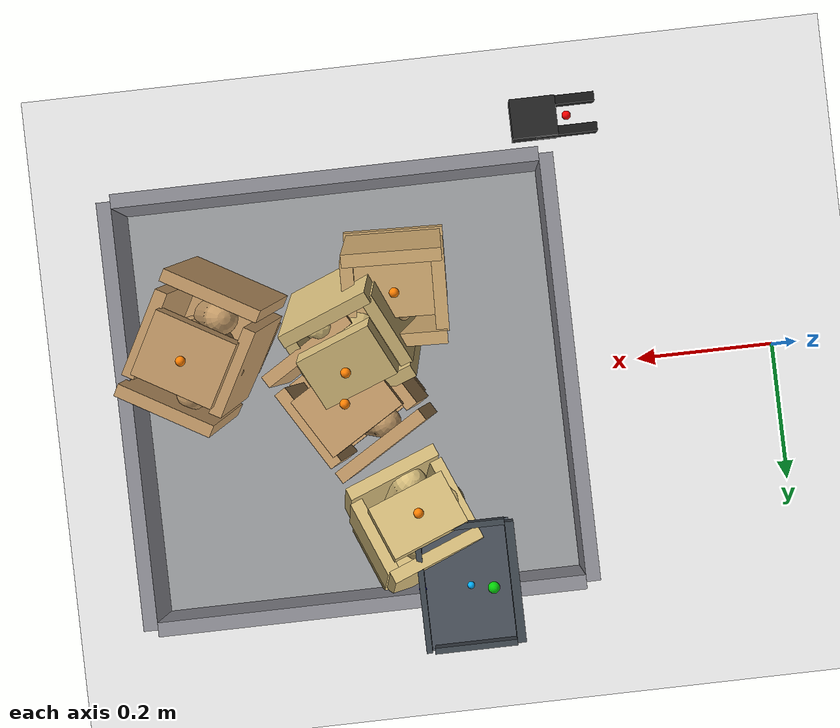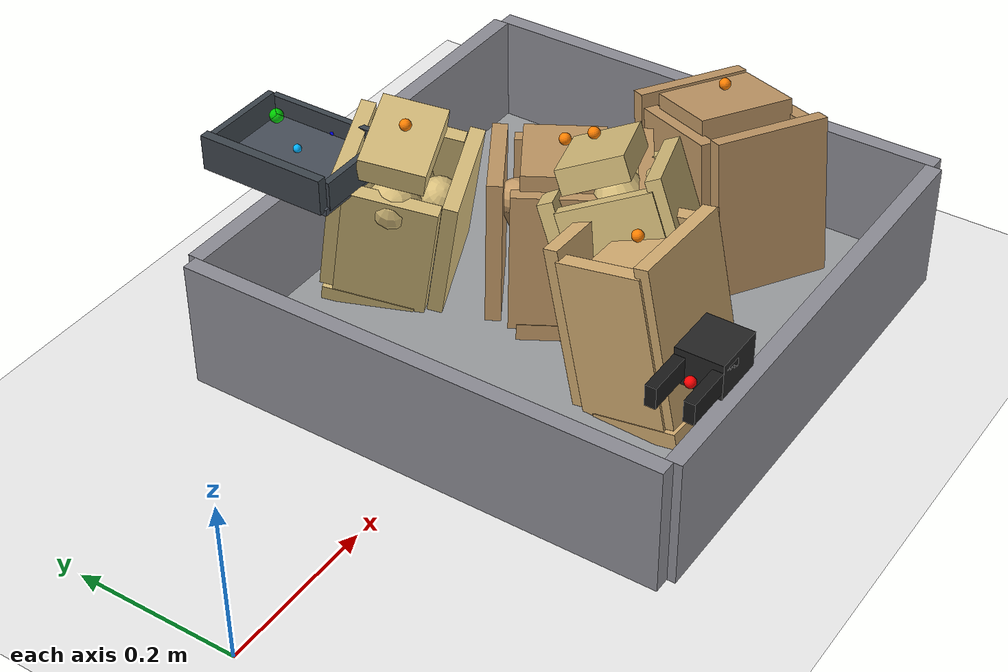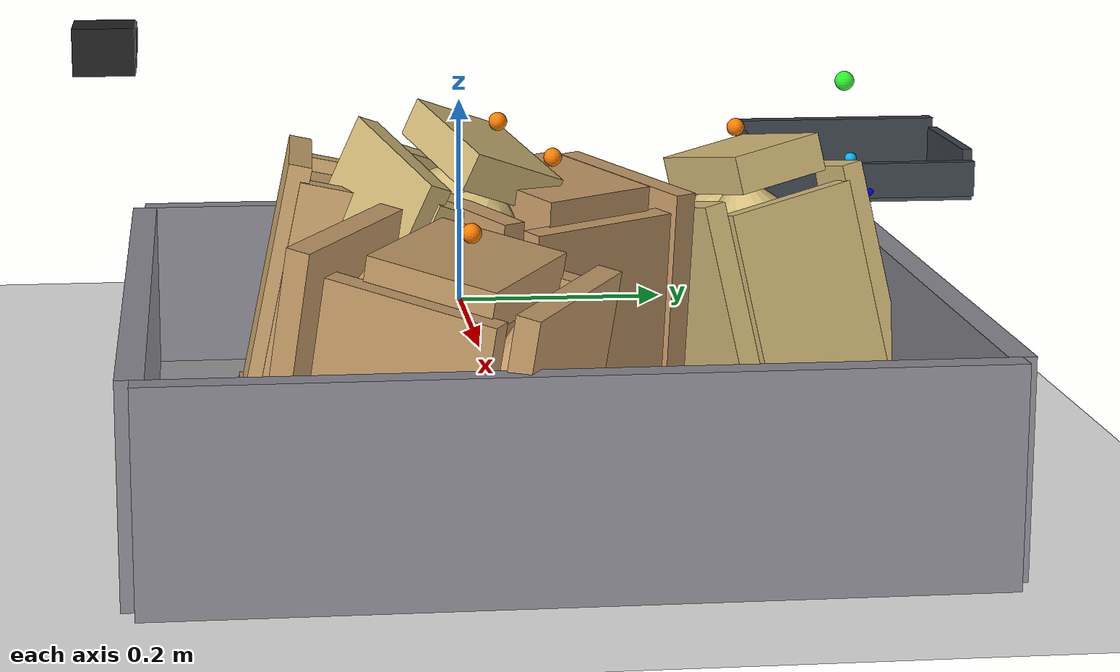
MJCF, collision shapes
<mujoco model="regular_well_filled_leaning_wedged_ep0_try0">
  <compiler angle="radian" coordinate="local" inertiafromgeom="true" meshdir="D:/Michael/2025/01.Research/01.Parceldetection/16.Pybullet/bullet3-master (1)/bullet3-master/examples/pybullet/examples/DeformableTest/Sackcodex2/object"/>
  <option timestep="0.002" gravity="0 0 -9.81" integrator="implicitfast" iterations="100" tolerance="1e-8"/>
  <size memory="768M" nconmax="12000"/>

  <visual>
    <global azimuth="128" elevation="-20"/>
    <headlight ambient="0.34 0.34 0.34" diffuse="0.78 0.78 0.78" specular="0.15 0.15 0.15"/>
    <rgba haze="0.11 0.13 0.18 1"/>
  </visual>

  <default>
    <geom condim="4" friction="1.15 0.03 0.01" margin="0.003" solimp="0.93 0.98 0.003" solref="0.012 1"/>
    <joint damping="1.2" armature="0.002"/>
    <position kp="2500" forcelimited="true" forcerange="-420 420"/>
    <motor ctrllimited="true"/>
  </default>

  <asset>
    <mesh name="sack_0_visual_mesh" file="sack8.obj" scale="0.0701 0.0701 0.0751"/>
    <mesh name="sack_1_visual_mesh" file="sack.obj" scale="0.0730 0.0730 0.0743"/>
    <mesh name="sack_2_visual_mesh" file="sack6Apply.obj" scale="0.0760 0.0760 0.0803"/>
    <mesh name="sack_3_visual_mesh" file="sack7.obj" scale="0.0707 0.0707 0.0754"/>
    <mesh name="sack_4_visual_mesh" file="sack9.obj" scale="0.0756 0.0756 0.0809"/>
  </asset>

  <worldbody>
    <light name="key" pos="0.85 0.15 1.8" dir="-0.2 -0.1 -1" directional="true"/>
    <geom name="floor" type="plane" size="2 2 0.1" rgba="0.93 0.93 0.93 1"/>
    <geom name="work_pad" type="box" pos="0.62 0 0.012" size="0.30 0.30 0.012" rgba="0.60 0.61 0.62 1" friction="1.4 0.05 0.01"/>
    <geom name="corral_front" type="box" pos="0.93 0.00 0.08" size="0.010 0.30 0.08" rgba="0.55 0.55 0.58 0.22" friction="1.0 0.03 0.01"/>
    <geom name="corral_back" type="box" pos="0.31 0.00 0.08" size="0.010 0.30 0.08" rgba="0.55 0.55 0.58 0.18" friction="1.0 0.03 0.01"/>
    <geom name="corral_left" type="box" pos="0.62 0.30 0.08" size="0.30 0.010 0.08" rgba="0.55 0.55 0.58 0.14" friction="1.0 0.03 0.01"/>
    <geom name="corral_right" type="box" pos="0.62 -0.30 0.08" size="0.30 0.010 0.08" rgba="0.55 0.55 0.58 0.14" friction="1.0 0.03 0.01"/>
    <camera name="overview" pos="1.22 0.00 0.92" xyaxes="0 1 0 -0.46 0 0.88"/>

    <body name="gripper_mocap" mocap="true" pos="0.36 -0.33 0.30" quat="0.707107 0 -0.707107 0"/>
    <body name="scoop_mocap" mocap="true" pos="0.42 0.28 0.20" quat="1 0 0 0"/>

    <body name="gripper_ctrl_base" pos="0.36 -0.33 0.30">
      <inertial pos="0 0 0" mass="0.001" diaginertia="1e-6 1e-6 1e-6"/>
      <joint name="gripper_ctrl_x" type="slide" axis="1 0 0" limited="true" range="0.20 1.00"/>
      <body name="gripper_ctrl_y_body">
        <inertial pos="0 0 0" mass="0.001" diaginertia="1e-6 1e-6 1e-6"/>
        <joint name="gripper_ctrl_y" type="slide" axis="0 1 0" limited="true" range="-0.60 0.60"/>
        <body name="gripper_ctrl_z_body">
          <inertial pos="0 0 0" mass="0.001" diaginertia="1e-6 1e-6 1e-6"/>
          <joint name="gripper_ctrl_z" type="slide" axis="0 0 1" limited="true" range="0.04 0.70"/>
          <body name="gripper_ctrl_yaw_body">
            <inertial pos="0 0 0" mass="0.001" diaginertia="1e-6 1e-6 1e-6"/>
            <joint name="gripper_ctrl_yaw" type="hinge" axis="0 0 1" limited="true" range="-3.1416 3.1416"/>
            <body name="gripper_ctrl_pitch_body">
              <inertial pos="0 0 0" mass="0.001" diaginertia="1e-6 1e-6 1e-6"/>
              <joint name="gripper_ctrl_pitch" type="hinge" axis="0 1 0" limited="true" range="-3.1416 3.1416"/>
              <body name="gripper_ctrl_roll_body">
                <inertial pos="0 0 0" mass="0.001" diaginertia="1e-6 1e-6 1e-6"/>
                <joint name="gripper_ctrl_roll" type="hinge" axis="1 0 0" limited="true" range="-3.1416 3.1416"/>
              </body>
            </body>
          </body>
        </body>
      </body>
    </body>

    <body name="scoop_ctrl_base" pos="0.42 0.28 0.20">
      <inertial pos="0 0 0" mass="0.001" diaginertia="1e-6 1e-6 1e-6"/>
      <joint name="scoop_ctrl_x" type="slide" axis="1 0 0" limited="true" range="0.20 1.00"/>
      <body name="scoop_ctrl_y_body">
        <inertial pos="0 0 0" mass="0.001" diaginertia="1e-6 1e-6 1e-6"/>
        <joint name="scoop_ctrl_y" type="slide" axis="0 1 0" limited="true" range="-0.60 0.60"/>
        <body name="scoop_ctrl_z_body">
          <inertial pos="0 0 0" mass="0.001" diaginertia="1e-6 1e-6 1e-6"/>
          <joint name="scoop_ctrl_z" type="slide" axis="0 0 1" limited="true" range="0.04 0.70"/>
          <body name="scoop_ctrl_yaw_body">
            <inertial pos="0 0 0" mass="0.001" diaginertia="1e-6 1e-6 1e-6"/>
            <joint name="scoop_ctrl_yaw" type="hinge" axis="0 0 1" limited="true" range="-3.1416 3.1416"/>
            <body name="scoop_ctrl_pitch_body">
              <inertial pos="0 0 0" mass="0.001" diaginertia="1e-6 1e-6 1e-6"/>
              <joint name="scoop_ctrl_pitch" type="hinge" axis="0 1 0" limited="true" range="-3.1416 3.1416"/>
              <body name="scoop_ctrl_roll_body">
                <inertial pos="0 0 0" mass="0.001" diaginertia="1e-6 1e-6 1e-6"/>
                <joint name="scoop_ctrl_roll" type="hinge" axis="1 0 0" limited="true" range="-3.1416 3.1416"/>
              </body>
            </body>
          </body>
        </body>
      </body>
    </body>

    <body name="gripper_tool" pos="0.36 -0.33 0.30" quat="0.707107 0 -0.707107 0">
      <freejoint name="gripper_tool_free"/>
      <inertial pos="0 0 0.04" mass="0.08" diaginertia="0.0002 0.0002 0.0002"/>
      <geom name="gripper_palm" type="box" pos="0 0 0.030" size="0.020 0.026 0.030" rgba="0.14 0.14 0.14 1"/>
      <body name="left_finger_body" pos="0 0 0.072">
        <joint name="left_finger_slide" type="slide" axis="0 1 0" limited="true" range="0.010 0.040" damping="12"/>
        <geom name="left_finger_geom" type="box" pos="0 0.020 0" size="0.012 0.006 0.040" rgba="0.10 0.10 0.10 1" friction="2.2 0.05 0.01"/>
      </body>
      <body name="right_finger_body" pos="0 0 0.072">
        <joint name="right_finger_slide" type="slide" axis="0 -1 0" limited="true" range="0.010 0.040" damping="12"/>
        <geom name="right_finger_geom" type="box" pos="0 -0.020 0" size="0.012 0.006 0.040" rgba="0.10 0.10 0.10 1" friction="2.2 0.05 0.01"/>
      </body>
      <site name="gripper_pinch_site" pos="0 0 0.074" size="0.006" rgba="1 0 0 1"/>
    </body>

    <body name="scoop_tool" pos="0.42 0.28 0.20" quat="1 0 0 0">
      <freejoint name="scoop_tool_free"/>
      <inertial pos="0 0 0.02" mass="0.10" diaginertia="0.0003 0.0003 0.0003"/>
      <geom name="scoop_plate" type="box" pos="0.062 0 0" size="0.062 0.085 0.004" rgba="0.28 0.31 0.35 1" friction="1.7 0.05 0.01"/>
      <geom name="scoop_lip" type="box" pos="0.126 0 0.014" size="0.004 0.085 0.014" rgba="0.24 0.27 0.30 1" friction="1.7 0.05 0.01"/>
      <geom name="scoop_left_rail" type="box" pos="0.062 0.082 0.018" size="0.056 0.004 0.018" rgba="0.24 0.27 0.30 1"/>
      <geom name="scoop_right_rail" type="box" pos="0.062 -0.082 0.018" size="0.056 0.004 0.018" rgba="0.24 0.27 0.30 1"/>
      <geom name="scoop_backstop" type="box" pos="0.000 0 0.022" size="0.006 0.082 0.022" rgba="0.24 0.27 0.30 1"/>
      <site name="scoop_tip_site" pos="0.126 0 0.005" size="0.005" rgba="0 0 1 1"/>
      <site name="scoop_center_site" pos="0.060 0 0.020" size="0.005" rgba="0 0.7 1 1"/>
      <site name="score_overlay_site" pos="0.030 0 0.080" size="0.008" rgba="0 1 0 0.8"/>
    </body>

    <body name="sack_0" pos="0.6048 -0.0849 0.1573" euler="-0.4187 0.0873 0.4203">
      <freejoint name="sack_0_free"/>

      <geom name="sack_0_visual" type="mesh" mesh="sack_0_visual_mesh" rgba="0.840 0.740 0.480 0.92" contype="0" conaffinity="0"/>
      <site name="sack_0_center_site" pos="0 0 0.000" size="0.006" rgba="0 1 0 1"/>
      <site name="sack_0_top_site" pos="0 0.0060 0.1344" size="0.007" rgba="1 0.5 0 1"/>
      <site name="sack_0_side_site" pos="0.0000 0.0492 0.018" size="0.007" rgba="1 0.8 0 1"/>

      <geom name="sack_0_core_geom" type="ellipsoid" pos="0 0 0.0059" size="0.0502 0.0420 0.0891" mass="0.9766" rgba="0.840 0.740 0.480 0.12" friction="1.0 0.03 0.01"/>
      <geom name="sack_0_core_front" type="capsule" fromto="-0.0200 0 -0.0200 0.0450 0 0.0600" size="0.0311" mass="0.2325" rgba="0.840 0.740 0.480 0.10"/>
      <geom name="sack_0_core_left" type="capsule" fromto="-0.008 0.0235 -0.010 0.018 0.0415 0.060" size="0.0240" mass="0.4186" rgba="0.840 0.740 0.480 0.10"/>
      <geom name="sack_0_core_right" type="capsule" fromto="-0.006 -0.0235 -0.008 0.020 -0.0435 0.054" size="0.0220" mass="0.4186" rgba="0.840 0.740 0.480 0.10"/>

      <body name="sack_0_bottom_support_proxy_body" pos="0 -0.0060 -0.0812">
        <joint name="sack_0_bottom_x" type="slide" axis="1 0 0" limited="true" range="-0.012 0.012" damping="18" stiffness="492.3"/>
        <joint name="sack_0_bottom_y" type="slide" axis="0 1 0" limited="true" range="-0.012 0.012" damping="18" stiffness="492.3"/>
        <joint name="sack_0_bottom_z" type="slide" axis="0 0 1" limited="true" range="-0.008 0.020" damping="24" stiffness="606.1"/>
        <geom name="sack_0_bottom_support_proxy" type="box" size="0.0719 0.0552 0.0100" mass="0.1860" rgba="0.840 0.740 0.480 0.34" friction="1.55 0.05 0.01"/>
      </body>

      <body name="sack_0_top_grasp_proxy_body" pos="0.0000 0.0060 0.1044">
        <joint name="sack_0_top_x" type="slide" axis="1 0 0" limited="true" range="-0.018 0.018" damping="12" stiffness="189.2"/>
        <joint name="sack_0_top_y" type="slide" axis="0 1 0" limited="true" range="-0.018 0.018" damping="12" stiffness="189.2"/>
        <joint name="sack_0_top_z" type="slide" axis="0 0 1" limited="true" range="-0.040 0.010" damping="14" stiffness="140.8"/>
        <geom name="sack_0_top_grasp_proxy" type="box" size="0.0559 0.0392 0.0150" mass="0.1395" rgba="0.840 0.740 0.480 0.26" friction="2.2 0.05 0.01"/>
      </body>

      <body name="sack_0_left_side_proxy_body" pos="0 0.0627 0.010">
        <joint name="sack_0_left_side_slide" type="slide" axis="0 -1 0" limited="true" range="-0.028 0.016" damping="16" stiffness="251.2"/>
        <geom name="sack_0_left_side_proxy" type="box" size="0.0679 0.0090 0.0792" mass="0.1395" rgba="0.840 0.740 0.480 0.24"/>
      </body>

      <body name="sack_0_right_side_proxy_body" pos="0 -0.0587 0.010">
        <joint name="sack_0_right_side_slide" type="slide" axis="0 1 0" limited="true" range="-0.028 0.016" damping="16" stiffness="232.8"/>
        <geom name="sack_0_right_side_proxy" type="box" size="0.0679 0.0090 0.0792" mass="0.1395" rgba="0.840 0.740 0.480 0.24"/>
      </body>

      <body name="sack_0_front_proxy_body" pos="0.0619 0 0.000">
        <joint name="sack_0_front_slide" type="slide" axis="-1 0 0" limited="true" range="-0.022 0.012" damping="15" stiffness="236.1"/>
        <geom name="sack_0_front_support_proxy" type="box" size="0.0090 0.0552 0.0772" mass="0.1163" rgba="0.840 0.740 0.480 0.22"/>
      </body>

      <body name="sack_0_back_proxy_body" pos="-0.0619 0 0.000">
        <joint name="sack_0_back_slide" type="slide" axis="1 0 0" limited="true" range="-0.022 0.012" damping="15" stiffness="217.7"/>
        <geom name="sack_0_back_support_proxy" type="box" size="0.0090 0.0552 0.0772" mass="0.1163" rgba="0.840 0.740 0.480 0.22"/>
      </body>

      <body name="sack_0_shape_proxy_body" pos="0.0000 0.0155 0.0292">
        <joint name="sack_0_bulge_y" type="slide" axis="0 1 0" limited="true" range="-0.020 0.020" damping="8" stiffness="78.5"/>
        <joint name="sack_0_bulge_z" type="slide" axis="0 0 1" limited="true" range="-0.014 0.028" damping="8" stiffness="83.9"/>
        <geom name="sack_0_shape_proxy" type="ellipsoid" size="0.0200 0.0161 0.0261" mass="0.0930" rgba="0.840 0.740 0.480 0.28"/>
      </body>
    </body>

    <body name="sack_1" pos="0.5392 -0.1415 0.1256" euler="-0.2057 0.0055 -0.0344">
      <freejoint name="sack_1_free"/>

      <geom name="sack_1_visual" type="mesh" mesh="sack_1_visual_mesh" rgba="0.820 0.670 0.440 0.92" contype="0" conaffinity="0"/>
      <site name="sack_1_center_site" pos="0 0 0.000" size="0.006" rgba="0 1 0 1"/>
      <site name="sack_1_top_site" pos="0 -0.0060 0.1017" size="0.007" rgba="1 0.5 0 1"/>
      <site name="sack_1_side_site" pos="0.0000 -0.0469 0.018" size="0.007" rgba="1 0.8 0 1"/>

      <geom name="sack_1_core_geom" type="ellipsoid" pos="0 0 0.0055" size="0.0448 0.0346 0.0663" mass="0.6982" rgba="0.820 0.670 0.440 0.12" friction="1.0 0.03 0.01"/>
      <geom name="sack_1_core_front" type="capsule" fromto="-0.0200 0 -0.0200 0.0450 0 0.0600" size="0.0293" mass="0.1662" rgba="0.820 0.670 0.440 0.10"/>
      <geom name="sack_1_core_left" type="capsule" fromto="-0.008 0.0221 -0.010 0.018 0.0401 0.060" size="0.0240" mass="0.2992" rgba="0.820 0.670 0.440 0.10"/>
      <geom name="sack_1_core_right" type="capsule" fromto="-0.006 -0.0221 -0.008 0.020 -0.0421 0.054" size="0.0220" mass="0.2992" rgba="0.820 0.670 0.440 0.10"/>

      <body name="sack_1_bottom_support_proxy_body" pos="0 -0.0139 -0.1018">
        <joint name="sack_1_bottom_x" type="slide" axis="1 0 0" limited="true" range="-0.012 0.012" damping="18" stiffness="437.7"/>
        <joint name="sack_1_bottom_y" type="slide" axis="0 1 0" limited="true" range="-0.012 0.012" damping="18" stiffness="437.7"/>
        <joint name="sack_1_bottom_z" type="slide" axis="0 0 1" limited="true" range="-0.008 0.020" damping="24" stiffness="539.4"/>
        <geom name="sack_1_bottom_support_proxy" type="box" size="0.0722 0.0529 0.0100" mass="0.1330" rgba="0.820 0.670 0.440 0.34" friction="1.55 0.05 0.01"/>
      </body>

      <body name="sack_1_top_grasp_proxy_body" pos="0.0000 -0.0060 0.0717">
        <joint name="sack_1_top_x" type="slide" axis="1 0 0" limited="true" range="-0.018 0.018" damping="12" stiffness="168.0"/>
        <joint name="sack_1_top_y" type="slide" axis="0 1 0" limited="true" range="-0.018 0.018" damping="12" stiffness="168.0"/>
        <joint name="sack_1_top_z" type="slide" axis="0 0 1" limited="true" range="-0.040 0.010" damping="14" stiffness="122.6"/>
        <geom name="sack_1_top_grasp_proxy" type="box" size="0.0562 0.0369 0.0150" mass="0.0997" rgba="0.820 0.670 0.440 0.26" friction="2.2 0.05 0.01"/>
      </body>

      <body name="sack_1_left_side_proxy_body" pos="0 0.0590 0.010">
        <joint name="sack_1_left_side_slide" type="slide" axis="0 -1 0" limited="true" range="-0.028 0.016" damping="16" stiffness="213.6"/>
        <geom name="sack_1_left_side_proxy" type="box" size="0.0682 0.0090 0.0998" mass="0.0997" rgba="0.820 0.670 0.440 0.24"/>
      </body>

      <body name="sack_1_right_side_proxy_body" pos="0 -0.0550 0.010">
        <joint name="sack_1_right_side_slide" type="slide" axis="0 1 0" limited="true" range="-0.028 0.016" damping="16" stiffness="198.1"/>
        <geom name="sack_1_right_side_proxy" type="box" size="0.0682 0.0090 0.0998" mass="0.0997" rgba="0.820 0.670 0.440 0.24"/>
      </body>

      <body name="sack_1_front_proxy_body" pos="0.0622 0 0.000">
        <joint name="sack_1_front_slide" type="slide" axis="-1 0 0" limited="true" range="-0.022 0.012" damping="15" stiffness="208.8"/>
        <geom name="sack_1_front_support_proxy" type="box" size="0.0090 0.0529 0.0978" mass="0.0831" rgba="0.820 0.670 0.440 0.22"/>
      </body>

      <body name="sack_1_back_proxy_body" pos="-0.0622 0 0.000">
        <joint name="sack_1_back_slide" type="slide" axis="1 0 0" limited="true" range="-0.022 0.012" damping="15" stiffness="193.4"/>
        <geom name="sack_1_back_support_proxy" type="box" size="0.0090 0.0529 0.0978" mass="0.0831" rgba="0.820 0.670 0.440 0.22"/>
      </body>

      <body name="sack_1_shape_proxy_body" pos="0.0000 -0.0141 0.0474">
        <joint name="sack_1_bulge_y" type="slide" axis="0 1 0" limited="true" range="-0.020 0.020" damping="8" stiffness="114.9"/>
        <joint name="sack_1_bulge_z" type="slide" axis="0 0 1" limited="true" range="-0.014 0.028" damping="8" stiffness="111.2"/>
        <geom name="sack_1_shape_proxy" type="ellipsoid" size="0.0200 0.0160 0.0264" mass="0.0665" rgba="0.820 0.670 0.440 0.28"/>
      </body>
    </body>

    <body name="sack_2" pos="0.6145 0.0069 0.1324" euler="-0.0325 0.0852 -2.5941">
      <freejoint name="sack_2_free"/>

      <geom name="sack_2_visual" type="mesh" mesh="sack_2_visual_mesh" rgba="0.760 0.600 0.400 0.92" contype="0" conaffinity="0"/>
      <site name="sack_2_center_site" pos="0 0 0.000" size="0.006" rgba="0 1 0 1"/>
      <site name="sack_2_top_site" pos="0 -0.0060 0.1185" size="0.007" rgba="1 0.5 0 1"/>
      <site name="sack_2_side_site" pos="0.0000 -0.0574 0.018" size="0.007" rgba="1 0.8 0 1"/>

      <geom name="sack_2_core_geom" type="ellipsoid" pos="0 0 0.0058" size="0.0448 0.0351 0.0788" mass="1.0033" rgba="0.760 0.600 0.400 0.12" friction="1.0 0.03 0.01"/>
      <geom name="sack_2_core_front" type="capsule" fromto="-0.0200 0 -0.0200 0.0450 0 0.0600" size="0.0306" mass="0.2389" rgba="0.760 0.600 0.400 0.10"/>
      <geom name="sack_2_core_left" type="capsule" fromto="-0.008 0.0368 -0.010 0.018 0.0548 0.060" size="0.0242" mass="0.4300" rgba="0.760 0.600 0.400 0.10"/>
      <geom name="sack_2_core_right" type="capsule" fromto="-0.006 -0.0368 -0.008 0.020 -0.0568 0.054" size="0.0222" mass="0.4300" rgba="0.760 0.600 0.400 0.10"/>

      <body name="sack_2_bottom_support_proxy_body" pos="0 0.0095 -0.0885">
        <joint name="sack_2_bottom_x" type="slide" axis="1 0 0" limited="true" range="-0.012 0.012" damping="18" stiffness="477.5"/>
        <joint name="sack_2_bottom_y" type="slide" axis="0 1 0" limited="true" range="-0.012 0.012" damping="18" stiffness="477.5"/>
        <joint name="sack_2_bottom_z" type="slide" axis="0 0 1" limited="true" range="-0.008 0.020" damping="24" stiffness="588.0"/>
        <geom name="sack_2_bottom_support_proxy" type="box" size="0.0756 0.0634 0.0100" mass="0.1911" rgba="0.760 0.600 0.400 0.34" friction="1.55 0.05 0.01"/>
      </body>

      <body name="sack_2_top_grasp_proxy_body" pos="0.0000 -0.0060 0.0885">
        <joint name="sack_2_top_x" type="slide" axis="1 0 0" limited="true" range="-0.018 0.018" damping="12" stiffness="183.5"/>
        <joint name="sack_2_top_y" type="slide" axis="0 1 0" limited="true" range="-0.018 0.018" damping="12" stiffness="183.5"/>
        <joint name="sack_2_top_z" type="slide" axis="0 0 1" limited="true" range="-0.040 0.010" damping="14" stiffness="135.8"/>
        <geom name="sack_2_top_grasp_proxy" type="box" size="0.0596 0.0474 0.0150" mass="0.1433" rgba="0.760 0.600 0.400 0.26" friction="2.2 0.05 0.01"/>
      </body>

      <body name="sack_2_left_side_proxy_body" pos="0 0.0842 0.010">
        <joint name="sack_2_left_side_slide" type="slide" axis="0 -1 0" limited="true" range="-0.028 0.016" damping="16" stiffness="241.1"/>
        <geom name="sack_2_left_side_proxy" type="box" size="0.0716 0.0090 0.0865" mass="0.1433" rgba="0.760 0.600 0.400 0.24"/>
      </body>

      <body name="sack_2_right_side_proxy_body" pos="0 -0.0802 0.010">
        <joint name="sack_2_right_side_slide" type="slide" axis="0 1 0" limited="true" range="-0.028 0.016" damping="16" stiffness="223.5"/>
        <geom name="sack_2_right_side_proxy" type="box" size="0.0716 0.0090 0.0865" mass="0.1433" rgba="0.760 0.600 0.400 0.24"/>
      </body>

      <body name="sack_2_front_proxy_body" pos="0.0656 0 0.000">
        <joint name="sack_2_front_slide" type="slide" axis="-1 0 0" limited="true" range="-0.022 0.012" damping="15" stiffness="228.7"/>
        <geom name="sack_2_front_support_proxy" type="box" size="0.0090 0.0634 0.0845" mass="0.1194" rgba="0.760 0.600 0.400 0.22"/>
      </body>

      <body name="sack_2_back_proxy_body" pos="-0.0656 0 0.000">
        <joint name="sack_2_back_slide" type="slide" axis="1 0 0" limited="true" range="-0.022 0.012" damping="15" stiffness="211.1"/>
        <geom name="sack_2_back_support_proxy" type="box" size="0.0090 0.0634 0.0845" mass="0.1194" rgba="0.760 0.600 0.400 0.22"/>
      </body>

      <body name="sack_2_shape_proxy_body" pos="0.0000 -0.0288 0.0342">
        <joint name="sack_2_bulge_y" type="slide" axis="0 1 0" limited="true" range="-0.020 0.020" damping="8" stiffness="88.3"/>
        <joint name="sack_2_bulge_z" type="slide" axis="0 0 1" limited="true" range="-0.014 0.028" damping="8" stiffness="91.3"/>
        <geom name="sack_2_shape_proxy" type="ellipsoid" size="0.0202 0.0163 0.0261" mass="0.0955" rgba="0.760 0.600 0.400 0.28"/>
      </body>
    </body>

    <body name="sack_3" pos="0.5529 0.1966 0.1214" euler="0.2167 -0.0830 -2.7544">
      <freejoint name="sack_3_free"/>

      <geom name="sack_3_visual" type="mesh" mesh="sack_3_visual_mesh" rgba="0.840 0.740 0.480 0.92" contype="0" conaffinity="0"/>
      <site name="sack_3_center_site" pos="0 0 0.000" size="0.006" rgba="0 1 0 1"/>
      <site name="sack_3_top_site" pos="0 -0.0060 0.1390" size="0.007" rgba="1 0.5 0 1"/>
      <site name="sack_3_side_site" pos="0.0000 -0.0489 0.018" size="0.007" rgba="1 0.8 0 1"/>

      <geom name="sack_3_core_geom" type="ellipsoid" pos="0 0 0.0059" size="0.0501 0.0417 0.0887" mass="1.1038" rgba="0.840 0.740 0.480 0.12" friction="1.0 0.03 0.01"/>
      <geom name="sack_3_core_front" type="capsule" fromto="-0.0200 0 -0.0200 0.0450 0 0.0600" size="0.0309" mass="0.2628" rgba="0.840 0.740 0.480 0.10"/>
      <geom name="sack_3_core_left" type="capsule" fromto="-0.008 0.0274 -0.010 0.018 0.0454 0.060" size="0.0241" mass="0.4731" rgba="0.840 0.740 0.480 0.10"/>
      <geom name="sack_3_core_right" type="capsule" fromto="-0.006 -0.0274 -0.008 0.020 -0.0474 0.054" size="0.0221" mass="0.4731" rgba="0.840 0.740 0.480 0.10"/>

      <body name="sack_3_bottom_support_proxy_body" pos="0 -0.0121 -0.0870">
        <joint name="sack_3_bottom_x" type="slide" axis="1 0 0" limited="true" range="-0.012 0.012" damping="18" stiffness="486.7"/>
        <joint name="sack_3_bottom_y" type="slide" axis="0 1 0" limited="true" range="-0.012 0.012" damping="18" stiffness="486.7"/>
        <joint name="sack_3_bottom_z" type="slide" axis="0 0 1" limited="true" range="-0.008 0.020" damping="24" stiffness="599.4"/>
        <geom name="sack_3_bottom_support_proxy" type="box" size="0.0718 0.0549 0.0100" mass="0.2103" rgba="0.840 0.740 0.480 0.34" friction="1.55 0.05 0.01"/>
      </body>

      <body name="sack_3_top_grasp_proxy_body" pos="0.0000 -0.0060 0.1090">
        <joint name="sack_3_top_x" type="slide" axis="1 0 0" limited="true" range="-0.018 0.018" damping="12" stiffness="187.1"/>
        <joint name="sack_3_top_y" type="slide" axis="0 1 0" limited="true" range="-0.018 0.018" damping="12" stiffness="187.1"/>
        <joint name="sack_3_top_z" type="slide" axis="0 0 1" limited="true" range="-0.040 0.010" damping="14" stiffness="138.9"/>
        <geom name="sack_3_top_grasp_proxy" type="box" size="0.0558 0.0389 0.0150" mass="0.1577" rgba="0.840 0.740 0.480 0.26" friction="2.2 0.05 0.01"/>
      </body>

      <body name="sack_3_left_side_proxy_body" pos="0 0.0663 0.010">
        <joint name="sack_3_left_side_slide" type="slide" axis="0 -1 0" limited="true" range="-0.028 0.016" damping="16" stiffness="247.5"/>
        <geom name="sack_3_left_side_proxy" type="box" size="0.0678 0.0090 0.0850" mass="0.1577" rgba="0.840 0.740 0.480 0.24"/>
      </body>

      <body name="sack_3_right_side_proxy_body" pos="0 -0.0623 0.010">
        <joint name="sack_3_right_side_slide" type="slide" axis="0 1 0" limited="true" range="-0.028 0.016" damping="16" stiffness="229.4"/>
        <geom name="sack_3_right_side_proxy" type="box" size="0.0678 0.0090 0.0850" mass="0.1577" rgba="0.840 0.740 0.480 0.24"/>
      </body>

      <body name="sack_3_front_proxy_body" pos="0.0618 0 0.000">
        <joint name="sack_3_front_slide" type="slide" axis="-1 0 0" limited="true" range="-0.022 0.012" damping="15" stiffness="233.4"/>
        <geom name="sack_3_front_support_proxy" type="box" size="0.0090 0.0549 0.0830" mass="0.1314" rgba="0.840 0.740 0.480 0.22"/>
      </body>

      <body name="sack_3_back_proxy_body" pos="-0.0618 0 0.000">
        <joint name="sack_3_back_slide" type="slide" axis="1 0 0" limited="true" range="-0.022 0.012" damping="15" stiffness="215.2"/>
        <geom name="sack_3_back_support_proxy" type="box" size="0.0090 0.0549 0.0830" mass="0.1314" rgba="0.840 0.740 0.480 0.22"/>
      </body>

      <body name="sack_3_shape_proxy_body" pos="0.0000 -0.0194 0.0311">
        <joint name="sack_3_bulge_y" type="slide" axis="0 1 0" limited="true" range="-0.020 0.020" damping="8" stiffness="82.2"/>
        <joint name="sack_3_bulge_z" type="slide" axis="0 0 1" limited="true" range="-0.014 0.028" damping="8" stiffness="86.6"/>
        <geom name="sack_3_shape_proxy" type="ellipsoid" size="0.0201 0.0161 0.0261" mass="0.1051" rgba="0.840 0.740 0.480 0.28"/>
      </body>
    </body>

    <body name="sack_4" pos="0.8181 -0.0890 0.1121" euler="-0.1388 0.1233 2.6299">
      <freejoint name="sack_4_free"/>

      <geom name="sack_4_visual" type="mesh" mesh="sack_4_visual_mesh" rgba="0.760 0.600 0.400 0.92" contype="0" conaffinity="0"/>
      <site name="sack_4_center_site" pos="0 0 0.000" size="0.006" rgba="0 1 0 1"/>
      <site name="sack_4_top_site" pos="0 -0.0060 0.1274" size="0.007" rgba="1 0.5 0 1"/>
      <site name="sack_4_side_site" pos="0.0000 -0.0587 0.018" size="0.007" rgba="1 0.8 0 1"/>

      <geom name="sack_4_core_geom" type="ellipsoid" pos="0 0 0.0059" size="0.0451 0.0356 0.0796" mass="0.8160" rgba="0.760 0.600 0.400 0.12" friction="1.0 0.03 0.01"/>
      <geom name="sack_4_core_front" type="capsule" fromto="-0.0200 0 -0.0200 0.0450 0 0.0600" size="0.0310" mass="0.1943" rgba="0.760 0.600 0.400 0.10"/>
      <geom name="sack_4_core_left" type="capsule" fromto="-0.008 0.0398 -0.010 0.018 0.0578 0.060" size="0.0242" mass="0.3497" rgba="0.760 0.600 0.400 0.10"/>
      <geom name="sack_4_core_right" type="capsule" fromto="-0.006 -0.0398 -0.008 0.020 -0.0598 0.054" size="0.0222" mass="0.3497" rgba="0.760 0.600 0.400 0.10"/>

      <body name="sack_4_bottom_support_proxy_body" pos="0 -0.0111 -0.0979">
        <joint name="sack_4_bottom_x" type="slide" axis="1 0 0" limited="true" range="-0.012 0.012" damping="18" stiffness="489.5"/>
        <joint name="sack_4_bottom_y" type="slide" axis="0 1 0" limited="true" range="-0.012 0.012" damping="18" stiffness="489.5"/>
        <joint name="sack_4_bottom_z" type="slide" axis="0 0 1" limited="true" range="-0.008 0.020" damping="24" stiffness="602.7"/>
        <geom name="sack_4_bottom_support_proxy" type="box" size="0.0760 0.0647 0.0100" mass="0.1554" rgba="0.760 0.600 0.400 0.34" friction="1.55 0.05 0.01"/>
      </body>

      <body name="sack_4_top_grasp_proxy_body" pos="0.0000 -0.0060 0.0974">
        <joint name="sack_4_top_x" type="slide" axis="1 0 0" limited="true" range="-0.018 0.018" damping="12" stiffness="188.1"/>
        <joint name="sack_4_top_y" type="slide" axis="0 1 0" limited="true" range="-0.018 0.018" damping="12" stiffness="188.1"/>
        <joint name="sack_4_top_z" type="slide" axis="0 0 1" limited="true" range="-0.040 0.010" damping="14" stiffness="139.8"/>
        <geom name="sack_4_top_grasp_proxy" type="box" size="0.0600 0.0487 0.0150" mass="0.1166" rgba="0.760 0.600 0.400 0.26" friction="2.2 0.05 0.01"/>
      </body>

      <body name="sack_4_left_side_proxy_body" pos="0 0.0884 0.010">
        <joint name="sack_4_left_side_slide" type="slide" axis="0 -1 0" limited="true" range="-0.028 0.016" damping="16" stiffness="249.2"/>
        <geom name="sack_4_left_side_proxy" type="box" size="0.0720 0.0090 0.0959" mass="0.1166" rgba="0.760 0.600 0.400 0.24"/>
      </body>

      <body name="sack_4_right_side_proxy_body" pos="0 -0.0844 0.010">
        <joint name="sack_4_right_side_slide" type="slide" axis="0 1 0" limited="true" range="-0.028 0.016" damping="16" stiffness="230.9"/>
        <geom name="sack_4_right_side_proxy" type="box" size="0.0720 0.0090 0.0959" mass="0.1166" rgba="0.760 0.600 0.400 0.24"/>
      </body>

      <body name="sack_4_front_proxy_body" pos="0.0660 0 0.000">
        <joint name="sack_4_front_slide" type="slide" axis="-1 0 0" limited="true" range="-0.022 0.012" damping="15" stiffness="234.7"/>
        <geom name="sack_4_front_support_proxy" type="box" size="0.0090 0.0647 0.0939" mass="0.0971" rgba="0.760 0.600 0.400 0.22"/>
      </body>

      <body name="sack_4_back_proxy_body" pos="-0.0660 0 0.000">
        <joint name="sack_4_back_slide" type="slide" axis="1 0 0" limited="true" range="-0.022 0.012" damping="15" stiffness="216.4"/>
        <geom name="sack_4_back_support_proxy" type="box" size="0.0090 0.0647 0.0939" mass="0.0971" rgba="0.760 0.600 0.400 0.22"/>
      </body>

      <body name="sack_4_shape_proxy_body" pos="0.0000 -0.0318 0.0302">
        <joint name="sack_4_bulge_y" type="slide" axis="0 1 0" limited="true" range="-0.020 0.020" damping="8" stiffness="80.4"/>
        <joint name="sack_4_bulge_z" type="slide" axis="0 0 1" limited="true" range="-0.014 0.028" damping="8" stiffness="85.3"/>
        <geom name="sack_4_shape_proxy" type="ellipsoid" size="0.0202 0.0164 0.0261" mass="0.0777" rgba="0.760 0.600 0.400 0.28"/>
      </body>
    </body>
  </worldbody>

  <equality>
    <weld name="gripper_follow" body1="gripper_mocap" body2="gripper_tool" torquescale="400" solref="0.002 1" solimp="0.99 0.999 0.0001"/>
    <weld name="scoop_follow" body1="scoop_mocap" body2="scoop_tool" torquescale="500" solref="0.002 1" solimp="0.99 0.999 0.0001"/>
  </equality>

  <actuator>
    <position name="gripper_ctrl_x_act" joint="gripper_ctrl_x" ctrlrange="0.20 1.00" kp="3500" forcerange="-300 300"/>
    <position name="gripper_ctrl_y_act" joint="gripper_ctrl_y" ctrlrange="-0.60 0.60" kp="3500" forcerange="-300 300"/>
    <position name="gripper_ctrl_z_act" joint="gripper_ctrl_z" ctrlrange="0.04 0.70" kp="3500" forcerange="-300 300"/>
    <position name="gripper_ctrl_yaw_act" joint="gripper_ctrl_yaw" ctrlrange="-3.1416 3.1416" kp="1800" forcerange="-250 250"/>
    <position name="gripper_ctrl_pitch_act" joint="gripper_ctrl_pitch" ctrlrange="-3.1416 3.1416" kp="1800" forcerange="-250 250"/>
    <position name="gripper_ctrl_roll_act" joint="gripper_ctrl_roll" ctrlrange="-3.1416 3.1416" kp="1800" forcerange="-250 250"/>
    <position name="scoop_ctrl_x_act" joint="scoop_ctrl_x" ctrlrange="0.20 1.00" kp="3500" forcerange="-300 300"/>
    <position name="scoop_ctrl_y_act" joint="scoop_ctrl_y" ctrlrange="-0.60 0.60" kp="3500" forcerange="-300 300"/>
    <position name="scoop_ctrl_z_act" joint="scoop_ctrl_z" ctrlrange="0.04 0.70" kp="3500" forcerange="-300 300"/>
    <position name="scoop_ctrl_yaw_act" joint="scoop_ctrl_yaw" ctrlrange="-3.1416 3.1416" kp="1800" forcerange="-250 250"/>
    <position name="scoop_ctrl_pitch_act" joint="scoop_ctrl_pitch" ctrlrange="-3.1416 3.1416" kp="1800" forcerange="-250 250"/>
    <position name="scoop_ctrl_roll_act" joint="scoop_ctrl_roll" ctrlrange="-3.1416 3.1416" kp="1800" forcerange="-250 250"/>
    <position name="left_finger_act" joint="left_finger_slide" ctrlrange="0.010 0.040" kp="2800" forcerange="-220 220"/>
    <position name="right_finger_act" joint="right_finger_slide" ctrlrange="0.010 0.040" kp="2800" forcerange="-220 220"/>
  </actuator>

  <contact>
    <exclude body1="sack_0_top_grasp_proxy_body" body2="sack_0_left_side_proxy_body"/>
    <exclude body1="sack_0_top_grasp_proxy_body" body2="sack_0_right_side_proxy_body"/>
    <exclude body1="sack_1_top_grasp_proxy_body" body2="sack_1_left_side_proxy_body"/>
    <exclude body1="sack_1_top_grasp_proxy_body" body2="sack_1_right_side_proxy_body"/>
    <exclude body1="sack_2_top_grasp_proxy_body" body2="sack_2_left_side_proxy_body"/>
    <exclude body1="sack_2_top_grasp_proxy_body" body2="sack_2_right_side_proxy_body"/>
    <exclude body1="sack_3_top_grasp_proxy_body" body2="sack_3_left_side_proxy_body"/>
    <exclude body1="sack_3_top_grasp_proxy_body" body2="sack_3_right_side_proxy_body"/>
    <exclude body1="sack_4_top_grasp_proxy_body" body2="sack_4_left_side_proxy_body"/>
    <exclude body1="sack_4_top_grasp_proxy_body" body2="sack_4_right_side_proxy_body"/>
  </contact>
</mujoco>
